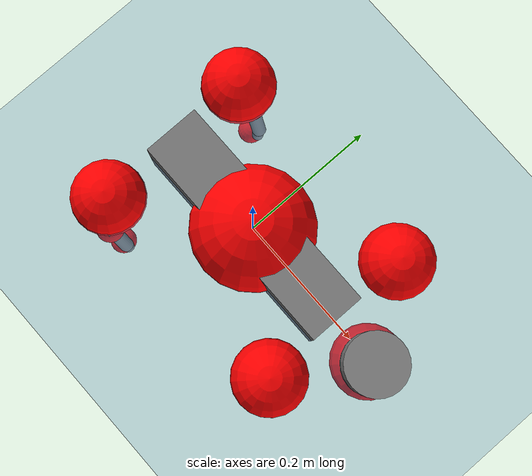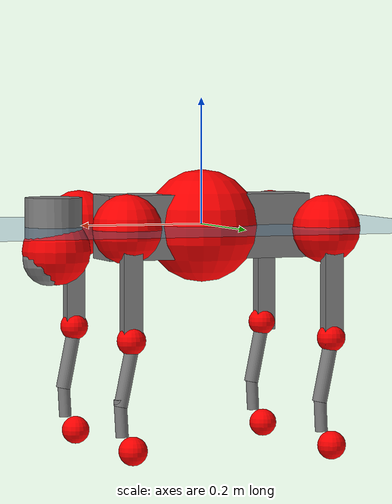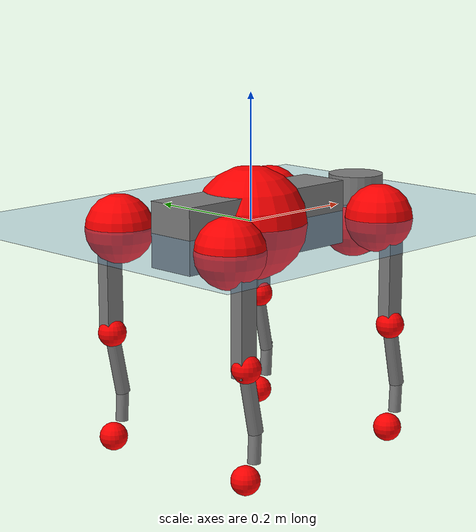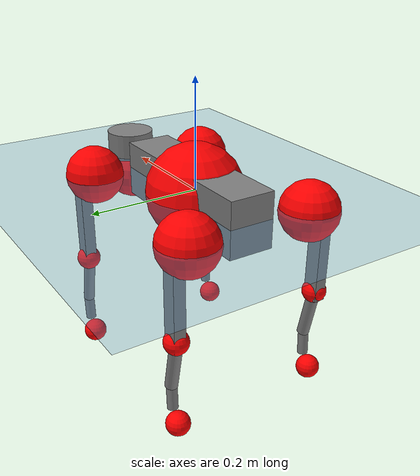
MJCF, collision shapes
<mujoco model="go2">
  <compiler angle="radian" assetdir="assets" balanceinertia="true" inertiafromgeom="false"/>

  <option timestep="0.005" density="1.2" viscosity="2e-05"/>

  <size nkey="1"/>

  <visual>
    <quality shadowsize="8192"/>
    <map shadowclip="0.5"/>
  </visual>

  <default>
    <default class="/">
      <geom contype="0" conaffinity="0" group="1" solref="-1000 -80"/>
      <site size="0.01 0.005 0.005" group="5"/>
      <general forcelimited="true" biastype="affine" gainprm="20" biasprm="0 -20 -0.5"/>
      <default class="go2">
        <joint armature="0.01" damping="0.01" frictionloss="0.2"/>
        <geom condim="1" margin="0.001"/>
        <default class="visual">
          <geom type="mesh" group="2"/>
        </default>
        <default class="collision">
          <geom group="3"/>
          <default class="foot">
            <geom size="0.022 0 0" condim="6" priority="1" friction="0.8 0.02 0.01" solimp="0.015 1 0.022"/>
          </default>
        </default>
        <default class="reward_collision_sphere">
          <geom group="5" rgba="1 0 0 1"/>
        </default>
      </default>
    </default>
  </default>

  <asset>
    <texture type="skybox" colorspace="auto" name="//unnamed_texture_0" builtin="gradient" rgb1="0.95 0.95 0.95" rgb2="0.95 0.95 0.95" width="100" height="600"/>
    <texture type="2d" colorspace="auto" name="texplane" builtin="checker" rgb1="0.345 0.575 0.748" rgb2="0.345 0.575 0.748" markrgb="1 1 1" width="512" height="512"/>
    <material name="MatPlane" class="/" texture="texplane" texuniform="true" texrepeat="2 2" specular="0.9"/>
    <material name="metal" class="/" rgba="0.9 0.95 0.95 1"/>
    <material name="black" class="/" rgba="0 0 0 1"/>
    <material name="white" class="/"/>
    <material name="gray" class="/" rgba="0.671705 0.692426 0.77427 1"/>
    <mesh name="base_0" class="/" file="base_0.obj"/>
    <mesh name="base_1" class="/" file="base_1.obj"/>
    <mesh name="base_2" class="/" file="base_2.obj"/>
    <mesh name="base_3" class="/" file="base_3.obj"/>
    <mesh name="base_4" class="/" file="base_4.obj"/>
    <mesh name="hip_0" class="/" file="hip_0.obj"/>
    <mesh name="hip_1" class="/" file="hip_1.obj"/>
    <mesh name="thigh_0" class="/" file="thigh_0.obj"/>
    <mesh name="thigh_1" class="/" file="thigh_1.obj"/>
    <mesh name="thigh_mirror_0" class="/" file="thigh_mirror_0.obj"/>
    <mesh name="thigh_mirror_1" class="/" file="thigh_mirror_1.obj"/>
    <mesh name="calf_0" class="/" file="calf_0.obj"/>
    <mesh name="calf_1" class="/" file="calf_1.obj"/>
    <mesh name="calf_mirror_0" class="/" file="calf_mirror_0.obj"/>
    <mesh name="calf_mirror_1" class="/" file="calf_mirror_1.obj"/>
    <mesh name="foot" class="/" file="foot.obj"/>
  </asset>

  <worldbody>
    <geom name="floor" class="/" size="100 100 0.125" type="plane" group="0" material="MatPlane"/>
    <light name="toplight_shadow" class="/" pos="0 0 5" dir="0.0990148 0.0990148 -0.990148" type="directional" ambient="0.04 0.04 0.04" diffuse="0.55 0.55 0.55" specular="0.12 0.12 0.12"/>
    <light name="toplight_fill" class="/" pos="0 0 5" dir="0.0990148 0.0990148 -0.990148" type="directional" castshadow="false" ambient="0.04 0.04 0.04" diffuse="0.3 0.3 0.3" specular="0.08 0.08 0.08"/>
    <body name="trunk" childclass="go2" pos="-0.000598237 0.000860864 -0.00281343" quat="1 -9.69627e-05 -2.63878e-05 0.00018122">
      <inertial pos="0.0182041 0.00296686 -0.00437072" quat="0.00151837 0.711344 0.000432194 0.702842" mass="5.19803" diaginertia="0.0533753 0.114269 0.00842086"/>
      <joint name="//unnamed_joint_0" type="free" armature="0" damping="0" frictionloss="0"/>
      <geom name="//unnamed_geom_1" class="visual" material="black" mesh="base_0"/>
      <geom name="//unnamed_geom_2" class="visual" material="black" mesh="base_1"/>
      <geom name="//unnamed_geom_3" class="visual" material="black" mesh="base_2"/>
      <geom name="//unnamed_geom_4" class="visual" material="white" mesh="base_3"/>
      <geom name="//unnamed_geom_5" class="visual" material="gray" mesh="base_4"/>
      <geom name="trunk_1" class="collision" size="0.168431 0.0418615 0.0510397" type="box"/>
      <geom name="trunk_2" class="collision" size="0.0447717 0.0402945" pos="0.246445 0 0.00797775" type="cylinder"/>
      <geom name="trunk_3" class="collision" size="0.0420854" pos="0.253363 0 -0.0478665"/>
      <geom name="//unnamed_geom_9" class="reward_collision_sphere" size="0.0895434"/>
      <geom name="//unnamed_geom_10" class="reward_collision_sphere" size="0.053726" pos="0.242121 0 -0.0358999"/>
      <site name="imu" pos="-0.0185141 0.0138134 0.037276" size="0.00895434"/>
      <camera name="track" pos="0 -2.04762 0" quat="0.707107 0.707107 0 0" mode="trackcom"/>
      <camera name="ego_camera" pos="0.269792 0 0.0358999" quat="-0.5 -0.5 0.5 0.5"/>
      <body name="FL_hip" pos="0.164431 0.0464513 0.0031141" quat="0.999999 0.000408792 0.000667445 -0.00107916">
        <inertial pos="-0.0029244 6.47292e-05 -0.000532776" quat="0.495597 0.500625 0.506369 0.497342" mass="0.477554" diaginertia="0.000430949 0.00070552 0.000155533"/>
        <joint name="FL_hip_joint" pos="0 0 0" axis="0.999991 -0.00213054 -0.00376274" range="-1.05383 1.0556" armature="0.00891153" damping="0.023224" frictionloss="0.18371"/>
        <geom name="//unnamed_geom_11" class="visual" material="metal" mesh="hip_0"/>
        <geom name="//unnamed_geom_12" class="visual" material="gray" mesh="hip_1"/>
        <geom name="//unnamed_geom_13" class="collision" size="0.04119 0.0179087" pos="0 0.0819046 0" quat="0.707107 0.707107 0 0" type="cylinder"/>
        <geom name="//unnamed_geom_14" class="reward_collision_sphere" size="0.053726" pos="0 0.0716666 0"/>
        <body name="FL_thigh" pos="0.00185455 0.0974913 0.00269604" quat="1 0.000481728 -3.22955e-05 0.000349712">
          <inertial pos="-0.00135773 -0.0252096 -0.026636" quat="0.82945 0.0856989 -0.0204301 0.55159" mass="0.815044" diaginertia="0.00289978 0.0063328 0.000273403"/>
          <joint name="FL_thigh_joint" pos="0 0 0" axis="-0.00619021 0.99997 -0.00458475" stiffness="0.00810419" range="-1.51199 3.49872" armature="0.00776967" damping="0.00885208" frictionloss="0.156513"/>
          <geom name="//unnamed_geom_15" class="visual" material="metal" mesh="thigh_0"/>
          <geom name="//unnamed_geom_16" class="visual" material="gray" mesh="thigh_1"/>
          <geom name="//unnamed_geom_17" class="collision" size="0.0953637 0.0109691 0.0152224" pos="0 0 -0.084963" quat="0.707107 0 0.707107 0" type="box"/>
          <body name="FL_calf" pos="1.0244e-05 -0.000633106 -0.172163" quat="0.999999 -0.000485103 0.00118891 -0.00025616">
            <inertial pos="0.00395764 -0.000810995 -0.110036" quat="0.705744 -0.00312823 -0.0149427 0.708303" mass="0.172903" diaginertia="0.000688928 0.00167958 1.74495e-05"/>
            <joint name="FL_calf_joint" pos="0 0 0" axis="-0.0225206 0.999723 -0.00687451" stiffness="0.0119206" range="-2.7328 -0.85229" armature="0.0100802" damping="0.000519573" frictionloss="0.204221"/>
            <geom name="//unnamed_geom_18" class="visual" material="gray" mesh="calf_0"/>
            <geom name="//unnamed_geom_19" class="visual" material="black" mesh="calf_1"/>
            <geom name="FL_calf0" class="collision" size="0.0107452 0.053726" pos="0.00691775 0 -0.0478665" quat="0.994493 0 -0.104807 0" type="cylinder"/>
            <geom name="//unnamed_geom_21" class="collision" size="0.00984977 0.0291016" pos="0.0172944 0 -0.118071" quat="0.999688 0 0.0249974 0" type="cylinder"/>
            <geom name="//unnamed_geom_22" class="visual" pos="0 0 -0.169926" quat="1 0 0 0" material="black" mesh="foot"/>
            <geom name="FL_foot" class="foot" size="0.0161948" pos="-0.00172944 0 -0.169926"/>
            <geom name="//unnamed_geom_24" class="reward_collision_sphere" size="0.0223858"/>
            <geom name="//unnamed_geom_25" class="reward_collision_sphere" size="0.0223858" pos="-0.00172944 0 -0.169926"/>
            <site name="FL_foot" class="foot" pos="-0.00172944 0 -0.169926" size="0.00895434"/>
          </body>
        </body>
      </body>
      <body name="FR_hip" pos="0.168326 -0.0457857 0.000438085" quat="1 0.000621607 0.00026099 -0.000379734">
        <inertial pos="-0.00171044 -0.00291612 -0.000482422" quat="0.501472 0.501172 0.496704 0.500637" mass="0.486591" diaginertia="0.000402618 0.000648751 0.00014515"/>
        <joint name="FR_hip_joint" pos="0 0 0" axis="0.99989 -0.010634 -0.0103303" range="-1.00128 1.04903" armature="0.00981368" damping="0.00811315" frictionloss="0.167742"/>
        <geom name="//unnamed_geom_26" class="visual" pos="0 1.96911e-09 8.4459e-08" quat="4.63268e-05 1 0 0" material="metal" mesh="hip_0"/>
        <geom name="//unnamed_geom_27" class="visual" pos="0 3.19216e-09 -2.08899e-07" quat="4.63268e-05 1 0 0" material="gray" mesh="hip_1"/>
        <geom name="//unnamed_geom_28" class="collision" size="0.04119 0.0179087" pos="0 -0.0819046 0" quat="0.707107 0.707107 0 0" type="cylinder"/>
        <geom name="//unnamed_geom_29" class="reward_collision_sphere" size="0.053726" pos="0 -0.0716666 0"/>
        <body name="FR_thigh" pos="0.000859814 -0.0972609 0.00371485" quat="1 -5.29397e-06 0.000237266 0.000547799">
          <inertial pos="-0.000278209 0.0210101 -0.02542" quat="0.554247 -0.0300595 0.0782048 0.828125" mass="0.823664" diaginertia="0.00279647 0.00615347 0.000278814"/>
          <joint name="FR_thigh_joint" pos="0 0 0" axis="-0.00079724 -0.999986 0.00520856" range="-3.49327 1.60119" armature="0.00896692" damping="0.00255221" frictionloss="0.204321"/>
          <geom name="//unnamed_geom_30" class="visual" material="metal" mesh="thigh_mirror_0"/>
          <geom name="//unnamed_geom_31" class="visual" material="gray" mesh="thigh_mirror_1"/>
          <geom name="//unnamed_geom_32" class="collision" size="0.0953637 0.0109691 0.0152224" pos="0 0 -0.084963" quat="0.707107 0 0.707107 0" type="box"/>
          <body name="FR_calf" pos="-0.000597324 -0.00177538 -0.172202" quat="1 -1.03921e-05 -4.41666e-05 2.89534e-05">
            <inertial pos="0.00511022 -7.82178e-05 -0.113534" quat="0.702679 -0.00244454 0.0049002 0.711485" mass="0.174807" diaginertia="0.000717445 0.00164306 1.66509e-05"/>
            <joint name="FR_calf_joint" pos="0 0 0" axis="-0.001336 -0.999998 0.00166915" stiffness="0.000231466" range="0.819582 2.76484" armature="0.0078899" damping="0.0181664" frictionloss="0.154843"/>
            <geom name="//unnamed_geom_33" class="visual" material="gray" mesh="calf_mirror_0"/>
            <geom name="//unnamed_geom_34" class="visual" material="black" mesh="calf_mirror_1"/>
            <geom name="FR_calf0" class="collision" size="0.0116406 0.053726" pos="0.00864719 0 -0.0478665" quat="0.995004 0 -0.0998334 0" type="cylinder"/>
            <geom name="//unnamed_geom_36" class="collision" size="0.00984977 0.0291016" pos="0.0172944 0 -0.118071" quat="0.999688 0 0.0249974 0" type="cylinder"/>
            <geom name="//unnamed_geom_37" class="visual" pos="0 0 -0.169926" quat="1 0 0 0" material="black" mesh="foot"/>
            <geom name="FR_foot" class="foot" size="0.0196021" pos="-0.00172944 0 -0.169926"/>
            <geom name="//unnamed_geom_39" class="reward_collision_sphere" size="0.0223858"/>
            <geom name="//unnamed_geom_40" class="reward_collision_sphere" size="0.0223858" pos="-0.00172944 0 -0.169926"/>
            <site name="FR_foot" class="foot" pos="-0.00172944 0 -0.169926" size="0.00895434"/>
          </body>
        </body>
      </body>
      <body name="RL_hip" pos="-0.165565 0.0462148 -0.00206172" quat="1 -7.77258e-05 -0.000558016 -0.000259567">
        <inertial pos="0.00704692 0.00218065 -0.00201889" quat="0.509022 0.49607 0.495902 0.498891" mass="0.495871" diaginertia="0.000430683 0.000688208 0.000158787"/>
        <joint name="RL_hip_joint" pos="0 0 0" axis="-0.999804 -0.00446523 0.0193047" stiffness="0.00985023" range="-1.04769 0.992112" armature="0.00835417" damping="0" frictionloss="0.186744"/>
        <geom name="//unnamed_geom_41" class="visual" pos="-5.83192e-10 0 -1.14319e-07" quat="4.63268e-05 0 1 0" material="metal" mesh="hip_0"/>
        <geom name="//unnamed_geom_42" class="visual" pos="-9.45424e-10 0 -1.01385e-07" quat="4.63268e-05 0 1 0" material="gray" mesh="hip_1"/>
        <geom name="//unnamed_geom_43" class="collision" size="0.04119 0.0179087" pos="0 0.0819046 0" quat="0.707107 0.707107 0 0" type="cylinder"/>
        <geom name="//unnamed_geom_44" class="reward_collision_sphere" size="0.053726" pos="0 0.0716666 0"/>
        <body name="RL_thigh" pos="0.000287982 0.0964395 0.000415689" quat="1 8.60328e-06 1.96247e-06 -3.40921e-06">
          <inertial pos="-0.00356358 -0.0232722 -0.025297" quat="0.829456 0.0779005 -0.0306502 0.552263" mass="0.847114" diaginertia="0.00290848 0.00677945 0.000299719"/>
          <joint name="RL_thigh_joint" pos="0 0 0" axis="-0.0120821 0.999913 -0.00535864" stiffness="0.00676483" range="-0.539542 4.5283" armature="0.009758" damping="0" frictionloss="0.177313"/>
          <geom name="//unnamed_geom_45" class="visual" material="metal" mesh="thigh_0"/>
          <geom name="//unnamed_geom_46" class="visual" material="gray" mesh="thigh_1"/>
          <geom name="//unnamed_geom_47" class="collision" size="0.0953637 0.0109691 0.0152224" pos="0 0 -0.084963" quat="0.707107 0 0.707107 0" type="box"/>
          <body name="RL_calf" pos="0.000168151 -0.00182405 -0.170202" quat="1 -0.000162548 -0.000570336 0.000466572">
            <inertial pos="0.00287084 -0.000841268 -0.113715" quat="0.707143 -0.0108568 -0.000494437 0.706987" mass="0.178492" diaginertia="0.0007165 0.00167523 1.77766e-05"/>
            <joint name="RL_calf_joint" pos="0 0 0" axis="0.0132389 0.999852 -0.0109798" stiffness="0.00618648" range="-2.72491 -0.780949" armature="0.0100643" damping="0" frictionloss="0.178364"/>
            <geom name="//unnamed_geom_48" class="visual" material="gray" mesh="calf_0"/>
            <geom name="//unnamed_geom_49" class="visual" material="black" mesh="calf_1"/>
            <geom name="RL_calf0" class="collision" size="0.0116406 0.053726" pos="0.00864719 0 -0.0478665" quat="0.995004 0 -0.0998334 0" type="cylinder"/>
            <geom name="//unnamed_geom_51" class="collision" size="0.00984977 0.0291016" pos="0.0172944 0 -0.118071" quat="0.999688 0 0.0249974 0" type="cylinder"/>
            <geom name="//unnamed_geom_52" class="visual" pos="0 0 -0.169926" quat="1 0 0 0" material="black" mesh="foot"/>
            <geom name="RL_foot" class="foot" size="0.0164756" pos="-0.00172944 0 -0.169926"/>
            <geom name="//unnamed_geom_54" class="reward_collision_sphere" size="0.0223858"/>
            <geom name="//unnamed_geom_55" class="reward_collision_sphere" size="0.0223858" pos="-0.00172944 0 -0.169926"/>
            <site name="RL_foot" class="foot" pos="-0.00172944 0 -0.169926" size="0.00895434"/>
          </body>
        </body>
      </body>
      <body name="RR_hip" pos="-0.164471 -0.0509021 -0.00423794" quat="1 -0.00012466 2.0587e-05 -8.84668e-05">
        <inertial pos="0.00457361 0.000178994 -0.00025992" quat="0.507936 0.491911 0.499545 0.500479" mass="0.48811" diaginertia="0.00043348 0.00068278 0.000157346"/>
        <joint name="RR_hip_joint" pos="0 0 0" axis="-0.999999 0.00056749 0.00155027" stiffness="0.0084552" range="-0.992893 1.05771" armature="0.00759611" damping="0" frictionloss="0.18673"/>
        <geom name="//unnamed_geom_56" class="visual" pos="5.887e-10 1.96911e-09 -1.98778e-07" quat="2.14617e-09 4.63268e-05 4.63268e-05 -1" material="metal" mesh="hip_0"/>
        <geom name="//unnamed_geom_57" class="visual" pos="9.31801e-10 3.19216e-09 1.07515e-07" quat="2.14617e-09 4.63268e-05 4.63268e-05 -1" material="gray" mesh="hip_1"/>
        <geom name="//unnamed_geom_58" class="collision" size="0.04119 0.0179087" pos="0 -0.0819046 0" quat="0.707107 0.707107 0 0" type="cylinder"/>
        <geom name="//unnamed_geom_59" class="reward_collision_sphere" size="0.053726" pos="0 -0.0716666 0"/>
        <body name="RR_thigh" pos="-0.000848004 -0.099642 0.00100628" quat="1 0.000203545 -8.38312e-05 -0.000141403">
          <inertial pos="-0.0032831 0.0230446 -0.0261492" quat="0.552142 -0.0193416 0.0836338 0.829319" mass="0.814068" diaginertia="0.00285383 0.00676883 0.000285513"/>
          <joint name="RR_thigh_joint" pos="0 0 0" axis="0.00627409 -0.99998 -0.00103599" stiffness="0.0112323" range="-4.53264 0.546721" armature="0.00919002" damping="0.0191859" frictionloss="0.187474"/>
          <geom name="//unnamed_geom_60" class="visual" material="metal" mesh="thigh_mirror_0"/>
          <geom name="//unnamed_geom_61" class="visual" material="gray" mesh="thigh_mirror_1"/>
          <geom name="//unnamed_geom_62" class="collision" size="0.0953637 0.0109691 0.0152224" pos="0 0 -0.084963" quat="0.707107 0 0.707107 0" type="box"/>
          <body name="RR_calf" pos="0.00297077 -0.00217918 -0.167613" quat="1 -0.000463853 0.000401271 -0.000103746">
            <inertial pos="0.00317256 0.000719896 -0.112617" quat="0.695818 -0.00395013 0.0102745 0.718134" mass="0.174051" diaginertia="0.00073949 0.00161905 1.73919e-05"/>
            <joint name="RR_calf_joint" pos="0 0 0" axis="-0.00636107 -0.999979 -0.000828722" range="0.794514 2.72207" armature="0.00805114" damping="0.0137037" frictionloss="0.161457"/>
            <geom name="//unnamed_geom_63" class="visual" material="gray" mesh="calf_mirror_0"/>
            <geom name="//unnamed_geom_64" class="visual" material="black" mesh="calf_mirror_1"/>
            <geom name="RR_calf0" class="collision" size="0.0116406 0.053726" pos="0.00864719 0 -0.0478665" quat="0.995004 0 -0.0998334 0" type="cylinder"/>
            <geom name="//unnamed_geom_66" class="collision" size="0.00984977 0.0291016" pos="0.0172944 0 -0.118071" quat="0.999688 0 0.0249974 0" type="cylinder"/>
            <geom name="//unnamed_geom_67" class="visual" pos="0 0 -0.169926" quat="1 0 0 0" material="black" mesh="foot"/>
            <geom name="RR_foot" class="foot" size="0.0189992" pos="-0.00172944 0 -0.169926"/>
            <geom name="//unnamed_geom_69" class="reward_collision_sphere" size="0.0223858"/>
            <geom name="//unnamed_geom_70" class="reward_collision_sphere" size="0.0223858" pos="-0.00172944 0 -0.169926"/>
            <site name="RR_foot" class="foot" pos="-0.00172944 0 -0.169926" size="0.00895434"/>
          </body>
        </body>
      </body>
    </body>
  </worldbody>

  <contact>
    <pair class="/" geom1="floor" geom2="FL_foot" name="//unnamed_contact_0"/>
    <pair class="/" geom1="floor" geom2="FR_foot" name="//unnamed_contact_1"/>
    <pair class="/" geom1="floor" geom2="RL_foot" name="//unnamed_contact_2"/>
    <pair class="/" geom1="floor" geom2="RR_foot" name="//unnamed_contact_3"/>
  </contact>

  <actuator>
    <general name="FL_hip" class="/" joint="FL_hip_joint" forcerange="-21.144 21.144" gainprm="19.1799" biasprm="0 -19.1799 -0.425424"/>
    <general name="FL_thigh" class="/" joint="FL_thigh_joint" forcerange="-19.0746 19.0746" gainprm="19.1799" biasprm="0 -19.1799 -0.425424"/>
    <general name="FL_calf" class="/" joint="FL_calf_joint" forcerange="-40.2713 40.2713" gainprm="19.1799" biasprm="0 -19.1799 -0.425424"/>
    <general name="FR_hip" class="/" joint="FR_hip_joint" forcerange="-21.8841 21.8841" gainprm="19.1799" biasprm="0 -19.1799 -0.425424"/>
    <general name="FR_thigh" class="/" joint="FR_thigh_joint" forcerange="-23.3617 23.3617" gainprm="19.1799" biasprm="0 -19.1799 -0.425424"/>
    <general name="FR_calf" class="/" joint="FR_calf_joint" forcerange="-41.605 41.605" gainprm="19.1799" biasprm="0 -19.1799 -0.425424"/>
    <general name="RL_hip" class="/" joint="RL_hip_joint" forcerange="-21.2145 21.2145" gainprm="19.1799" biasprm="0 -19.1799 -0.425424"/>
    <general name="RL_thigh" class="/" joint="RL_thigh_joint" forcerange="-19.0649 19.0649" gainprm="19.1799" biasprm="0 -19.1799 -0.425424"/>
    <general name="RL_calf" class="/" joint="RL_calf_joint" forcerange="-40.266 40.266" gainprm="19.1799" biasprm="0 -19.1799 -0.425424"/>
    <general name="RR_hip" class="/" joint="RR_hip_joint" forcerange="-19.3819 19.3819" gainprm="19.1799" biasprm="0 -19.1799 -0.425424"/>
    <general name="RR_thigh" class="/" joint="RR_thigh_joint" forcerange="-21.5545 21.5545" gainprm="19.1799" biasprm="0 -19.1799 -0.425424"/>
    <general name="RR_calf" class="/" joint="RR_calf_joint" forcerange="-42.2879 42.2879" gainprm="19.1799" biasprm="0 -19.1799 -0.425424"/>
  </actuator>

  <sensor>
    <gyro site="imu" name="imu_angular_velocity"/>
    <velocimeter site="imu" name="imu_linear_velocity"/>
    <framelinvel objtype="site" objname="FL_foot" name="FL_foot_global_linear_velocity"/>
    <framelinvel objtype="site" objname="FR_foot" name="FR_foot_global_linear_velocity"/>
    <framelinvel objtype="site" objname="RL_foot" name="RL_foot_global_linear_velocity"/>
    <framelinvel objtype="site" objname="RR_foot" name="RR_foot_global_linear_velocity"/>
  </sensor>

  <keyframe>
    <key name="home" qpos="0 0 0.325 1 0 0 0 0.1 0.8 -1.5 -0.1 -0.8 1.5 -0.1 0.8 -1.5 0.1 -0.8 1.5"/>
  </keyframe>
</mujoco>
